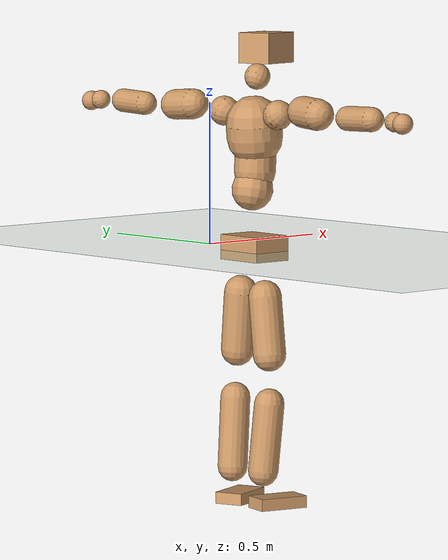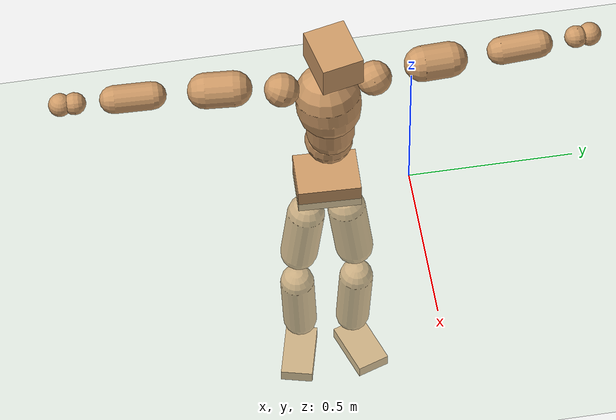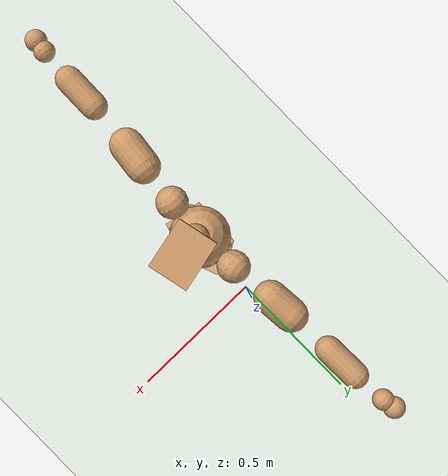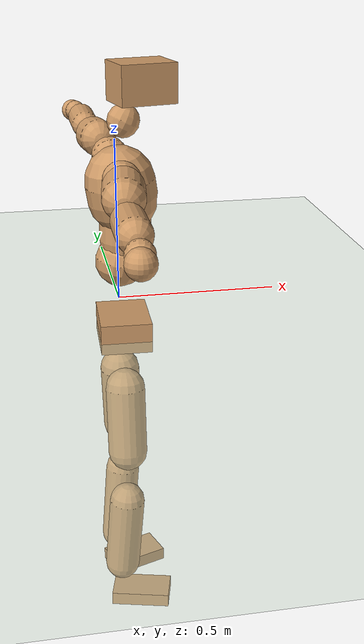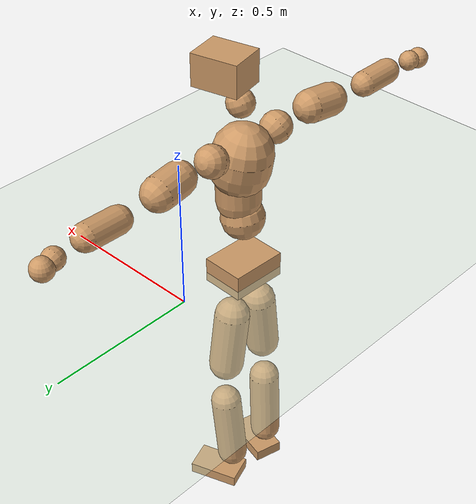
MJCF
<mujoco model="humanoid">
  <compiler coordinate="local" angle="radian"/>
  <default>
    <joint damping="0.0" armature="0.01" stiffness="0.0" limited="true"/>
    <geom conaffinity="1" condim="3" contype="7" margin="0.001" rgba="0.8 0.6 .4 1"/>
  </default>
  <asset>
    <texture type="skybox" builtin="gradient" rgb1=".4 .5 .6" rgb2="0 0 0" width="100" height="100"/>
    <texture builtin="flat" height="1278" mark="cross" markrgb="1 1 1" name="texgeom" random="0.01" rgb1="0.8 0.6 0.4" rgb2="0.8 0.6 0.4" type="cube" width="127"/>
    <texture builtin="checker" height="100" name="texplane" rgb1="0 0 0" rgb2="0.8 0.8 0.8" type="2d" width="100"/>
    <material name="MatPlane" reflectance="0.5" shininess="1" specular="1" texrepeat="60 60" texture="texplane"/>
    <material name="geom" texture="texgeom" texuniform="true"/>
  </asset>
  <worldbody>
    <light cutoff="100" diffuse="1 1 1" dir="-0 0 -1.3" directional="true" exponent="1" pos="0 0 1.3" specular=".1 .1 .1"/>
    <geom conaffinity="1" condim="3" name="floor" pos="0 0 0" rgba="0.8 0.9 0.8 1" size="100 100 .2" type="plane" material="MatPlane"/>
    <body name="Pelvis" pos="-0.0053 -0.2485 0.0169">
      <freejoint name="Pelvis"/>
      <geom type="box" contype="1" conaffinity="1" density="5359.374861" pos="-0.0119 0.0004 -0.0082" size="0.0726 0.0955 0.0433" quat="0.9999 0.0000 0.0000 -0.0169" name="Pelvis"/>
      <body name="L_Hip" pos="-0.0225 0.0515 -0.0806">
        <joint name="L_Hip_x" type="hinge" pos="0 0 0" axis="1 0 0" stiffness="1600" damping="160" armature="0.02" range="-180.0000 180.0000"/>
        <joint name="L_Hip_y" type="hinge" pos="0 0 0" axis="0 1 0" stiffness="1600" damping="160" armature="0.02" range="-180.0000 180.0000"/>
        <joint name="L_Hip_z" type="hinge" pos="0 0 0" axis="0 0 1" stiffness="1600" damping="160" armature="0.02" range="-180.0000 180.0000"/>
        <geom type="capsule" contype="1" conaffinity="1" density="2040.816327" size="0.0583" fromto="0.0031 0.0102 -0.0877 0.0102 0.0340 -0.2920" name="L_Hip"/>
        <body name="L_Knee" pos="0.0133 0.0442 -0.3796">
          <joint name="L_Knee_x" type="hinge" pos="0 0 0" axis="1 0 0" stiffness="1600" damping="160" armature="0.02" range="-180.0000 180.0000"/>
          <joint name="L_Knee_y" type="hinge" pos="0 0 0" axis="0 1 0" stiffness="1600" damping="160" armature="0.02" range="-180.0000 180.0000"/>
          <joint name="L_Knee_z" type="hinge" pos="0 0 0" axis="0 0 1" stiffness="1600" damping="160" armature="0.02" range="-180.0000 180.0000"/>
          <geom type="capsule" contype="1" conaffinity="1" density="1234.567901" size="0.0521" fromto="-0.0068 -0.0026 -0.0818 -0.0272 -0.0103 -0.3254" name="L_Knee"/>
          <body name="L_Ankle" pos="-0.034 -0.0129 -0.4071">
            <joint name="L_Ankle_x" type="hinge" pos="0 0 0" axis="1 0 0" stiffness="1600" damping="160" armature="0.02" range="-180.0000 180.0000"/>
            <joint name="L_Ankle_y" type="hinge" pos="0 0 0" axis="0 1 0" stiffness="1600" damping="160" armature="0.02" range="-180.0000 180.0000"/>
            <joint name="L_Ankle_z" type="hinge" pos="0 0 0" axis="0 0 1" stiffness="1600" damping="160" armature="0.02" range="-180.0000 180.0000"/>
            <geom type="box" contype="1" conaffinity="1" density="1000.000064" pos="0.0594 0.0206 -0.0294" size="0.0859 0.051 0.0203" quat="0.9861 0.0000 0.0000 0.1660" name="L_Ankle"/>
            <body name="L_Toe" pos="0.1188 0.0412 -0.0588">
              <joint name="L_Toe_x" type="hinge" pos="0 0 0" axis="1 0 0" stiffness="1000" damping="100" armature="0.02" range="-180.0000 180.0000"/>
              <joint name="L_Toe_y" type="hinge" pos="0 0 0" axis="0 1 0" stiffness="1000" damping="100" armature="0.02" range="-180.0000 180.0000"/>
              <joint name="L_Toe_z" type="hinge" pos="0 0 0" axis="0 0 1" stiffness="1000" damping="100" armature="0.02" range="-180.0000 180.0000"/>
              <geom type="box" contype="1" conaffinity="1" density="7837035.071031" pos="0.0000 0.0000 0.0296" size="0.001 0.0025 0.001" quat="0.9853 0.0000 0.0000 0.1708" name="L_Toe"/>
            </body>
          </body>
        </body>
      </body>
      <body name="R_Hip" pos="-0.0195 -0.053 -0.0882">
        <joint name="R_Hip_x" type="hinge" pos="0 0 0" axis="1 0 0" stiffness="1600" damping="160" armature="0.02" range="-180.0000 180.0000"/>
        <joint name="R_Hip_y" type="hinge" pos="0 0 0" axis="0 1 0" stiffness="1600" damping="160" armature="0.02" range="-180.0000 180.0000"/>
        <joint name="R_Hip_z" type="hinge" pos="0 0 0" axis="0 0 1" stiffness="1600" damping="160" armature="0.02" range="-180.0000 180.0000"/>
        <geom type="capsule" contype="1" conaffinity="1" density="2040.816327" size="0.0575" fromto="0.0000 -0.0097 -0.0869 0.0002 -0.0323 -0.2878" name="R_Hip"/>
        <body name="R_Knee" pos="0.0002 -0.042 -0.3748">
          <joint name="R_Knee_x" type="hinge" pos="0 0 0" axis="1 0 0" stiffness="1600" damping="160" armature="0.02" range="-180.0000 180.0000"/>
          <joint name="R_Knee_y" type="hinge" pos="0 0 0" axis="0 1 0" stiffness="1600" damping="160" armature="0.02" range="-180.0000 180.0000"/>
          <joint name="R_Knee_z" type="hinge" pos="0 0 0" axis="0 0 1" stiffness="1600" damping="160" armature="0.02" range="-180.0000 180.0000"/>
          <geom type="capsule" contype="1" conaffinity="1" density="1234.567901" size="0.0523" fromto="-0.0064 0.0038 -0.0820 -0.0248 0.0148 -0.3186" name="R_Knee"/>
          <body name="R_Ankle" pos="-0.0312 0.0186 -0.4006">
            <joint name="R_Ankle_x" type="hinge" pos="0 0 0" axis="1 0 0" stiffness="1600" damping="160" armature="0.02" range="-180.0000 180.0000"/>
            <joint name="R_Ankle_y" type="hinge" pos="0 0 0" axis="0 1 0" stiffness="1600" damping="160" armature="0.02" range="-180.0000 180.0000"/>
            <joint name="R_Ankle_z" type="hinge" pos="0 0 0" axis="0 0 1" stiffness="1600" damping="160" armature="0.02" range="-180.0000 180.0000"/>
            <geom type="box" contype="1" conaffinity="1" density="1000.000034" pos="0.0637 -0.0163 -0.0301" size="0.0884 0.0491 0.0208" quat="0.9922 0.0000 0.0000 -0.1249" name="R_Ankle"/>
            <body name="R_Toe" pos="0.1275 -0.0326 -0.0602">
              <joint name="R_Toe_x" type="hinge" pos="0 0 0" axis="1 0 0" stiffness="1000" damping="100" armature="0.02" range="-180.0000 180.0000"/>
              <joint name="R_Toe_y" type="hinge" pos="0 0 0" axis="0 1 0" stiffness="1000" damping="100" armature="0.02" range="-180.0000 180.0000"/>
              <joint name="R_Toe_z" type="hinge" pos="0 0 0" axis="0 0 1" stiffness="1000" damping="100" armature="0.02" range="-180.0000 180.0000"/>
              <geom type="box" contype="1" conaffinity="1" density="8322759.362701" pos="0.0000 0.0000 0.0311" size="0.001 0.0024 0.0011" quat="0.9933 0.0000 0.0000 -0.1158" name="R_Toe"/>
            </body>
          </body>
        </body>
      </body>
      <body name="Torso" pos="-0.0294 0.0039 0.1197">
        <joint name="Torso_x" type="hinge" pos="0 0 0" axis="1 0 0" stiffness="2000" damping="200" armature="0.02" range="-180.0000 180.0000"/>
        <joint name="Torso_y" type="hinge" pos="0 0 0" axis="0 1 0" stiffness="2000" damping="200" armature="0.02" range="-180.0000 180.0000"/>
        <joint name="Torso_z" type="hinge" pos="0 0 0" axis="0 0 1" stiffness="2000" damping="200" armature="0.02" range="-180.0000 180.0000"/>
        <geom type="capsule" contype="1" conaffinity="1" density="2040.816327" size="0.072" fromto="0.0144 0.0028 0.0724 0.0148 0.0028 0.0744" name="Torso"/>
        <body name="Spine" pos="0.0293 0.0056 0.1468">
          <joint name="Spine_x" type="hinge" pos="0 0 0" axis="1 0 0" stiffness="2000" damping="200" armature="0.02" range="-180.0000 180.0000"/>
          <joint name="Spine_y" type="hinge" pos="0 0 0" axis="0 1 0" stiffness="2000" damping="200" armature="0.02" range="-180.0000 180.0000"/>
          <joint name="Spine_z" type="hinge" pos="0 0 0" axis="0 0 1" stiffness="2000" damping="200" armature="0.02" range="-180.0000 180.0000"/>
          <geom type="capsule" contype="1" conaffinity="1" density="2040.816327" size="0.0724" fromto="0.0031 -0.0010 0.0723 -0.0005 0.0002 -0.0127" name="Spine"/>
          <body name="Chest" pos="0.0025 -0.0008 0.0596">
            <joint name="Chest_x" type="hinge" pos="0 0 0" axis="1 0 0" stiffness="2000" damping="200" armature="0.02" range="-180.0000 180.0000"/>
            <joint name="Chest_y" type="hinge" pos="0 0 0" axis="0 1 0" stiffness="2000" damping="200" armature="0.02" range="-180.0000 180.0000"/>
            <joint name="Chest_z" type="hinge" pos="0 0 0" axis="0 0 1" stiffness="2000" damping="200" armature="0.02" range="-180.0000 180.0000"/>
            <geom type="capsule" contype="1" conaffinity="1" density="2040.816327" size="0.0971" fromto="-0.0142 -0.0059 0.0958 -0.0070 -0.0029 0.0471" name="Chest"/>
            <body name="Neck" pos="-0.0266 -0.015 0.21">
              <joint name="Neck_x" type="hinge" pos="0 0 0" axis="1 0 0" stiffness="1000" damping="100" armature="0.02" range="-180.0000 180.0000"/>
              <joint name="Neck_y" type="hinge" pos="0 0 0" axis="0 1 0" stiffness="1000" damping="100" armature="0.02" range="-180.0000 180.0000"/>
              <joint name="Neck_z" type="hinge" pos="0 0 0" axis="0 0 1" stiffness="1000" damping="100" armature="0.02" range="-180.0000 180.0000"/>
              <geom type="capsule" contype="1" conaffinity="1" density="1000" size="0.0444" fromto="0.0247 0.0048 0.0476 0.0256 0.0049 0.0494" name="Neck"/>
              <body name="Head" pos="0.0504 0.0097 0.097">
                <joint name="Head_x" type="hinge" pos="0 0 0" axis="1 0 0" stiffness="1000" damping="100" armature="0.02" range="-180.0000 180.0000"/>
                <joint name="Head_y" type="hinge" pos="0 0 0" axis="0 1 0" stiffness="1000" damping="100" armature="0.02" range="-180.0000 180.0000"/>
                <joint name="Head_z" type="hinge" pos="0 0 0" axis="0 0 1" stiffness="1000" damping="100" armature="0.02" range="-180.0000 180.0000"/>
                <geom type="box" contype="1" conaffinity="1" density="2250.00008" pos="0.0262 0.0058 0.0495" size="0.0775 0.0624 0.0529" quat="0.9940 0.0000 0.0000 0.1095" name="Head"/>
              </body>
            </body>
            <body name="L_Thorax" pos="-0.0152 0.0718 0.1107">
              <joint name="L_Thorax_x" type="hinge" pos="0 0 0" axis="1 0 0" stiffness="1000" damping="100" armature="0.02" range="-180.0000 180.0000"/>
              <joint name="L_Thorax_y" type="hinge" pos="0 0 0" axis="0 1 0" stiffness="1000" damping="100" armature="0.02" range="-180.0000 180.0000"/>
              <joint name="L_Thorax_z" type="hinge" pos="0 0 0" axis="0 0 1" stiffness="1000" damping="100" armature="0.02" range="-180.0000 180.0000"/>
              <geom type="capsule" contype="1" conaffinity="1" density="1000" size="0.0519" fromto="-0.0085 0.0611 0.0231 -0.0088 0.0629 0.0238" name="L_Thorax"/>
              <body name="L_Shoulder" pos="-0.0173 0.124 0.0469">
                <joint name="L_Shoulder_x" type="hinge" pos="0 0 0" axis="1 0 0" stiffness="1000" damping="100" armature="0.02" range="-720.0000 720.0000"/>
                <joint name="L_Shoulder_y" type="hinge" pos="0 0 0" axis="0 1 0" stiffness="1000" damping="100" armature="0.02" range="-720.0000 720.0000"/>
                <joint name="L_Shoulder_z" type="hinge" pos="0 0 0" axis="0 0 1" stiffness="1000" damping="100" armature="0.02" range="-720.0000 720.0000"/>
                <geom type="capsule" contype="1" conaffinity="1" density="1000" size="0.0536" fromto="-0.0070 0.0831 -0.0057 -0.0141 0.1667 -0.0115" name="L_Shoulder"/>
                <body name="L_Elbow" pos="-0.0212 0.2498 -0.0172">
                  <joint name="L_Elbow_x" type="hinge" pos="0 0 0" axis="1 0 0" stiffness="1000" damping="100" armature="0.02" range="-720.0000 720.0000"/>
                  <joint name="L_Elbow_y" type="hinge" pos="0 0 0" axis="0 1 0" stiffness="1000" damping="100" armature="0.02" range="-720.0000 720.0000"/>
                  <joint name="L_Elbow_z" type="hinge" pos="0 0 0" axis="0 0 1" stiffness="1000" damping="100" armature="0.02" range="-720.0000 720.0000"/>
                  <geom type="capsule" contype="1" conaffinity="1" density="1000" size="0.0417" fromto="-0.0020 0.0716 0.0033 -0.0051 0.1853 0.0086" name="L_Elbow"/>
                  <body name="L_Wrist" pos="-0.007 0.2568 0.012">
                    <joint name="L_Wrist_x" type="hinge" pos="0 0 0" axis="1 0 0" stiffness="600" damping="60" armature="0.02" range="-180.0000 180.0000"/>
                    <joint name="L_Wrist_y" type="hinge" pos="0 0 0" axis="0 1 0" stiffness="600" damping="60" armature="0.02" range="-180.0000 180.0000"/>
                    <joint name="L_Wrist_z" type="hinge" pos="0 0 0" axis="0 0 1" stiffness="600" damping="60" armature="0.02" range="-180.0000 180.0000"/>
                    <geom type="capsule" contype="1" conaffinity="1" density="1000" size="0.0333" fromto="-0.0074 0.0413 -0.0051 -0.0077 0.0433 -0.0054" name="L_Wrist"/>
                    <body name="L_Hand" pos="-0.0151 0.0846 -0.0105">
                      <joint name="L_Hand_x" type="hinge" pos="0 0 0" axis="1 0 0" stiffness="600" damping="60" armature="0.02" range="-180.0000 180.0000"/>
                      <joint name="L_Hand_y" type="hinge" pos="0 0 0" axis="0 1 0" stiffness="600" damping="60" armature="0.02" range="-180.0000 180.0000"/>
                      <joint name="L_Hand_z" type="hinge" pos="0 0 0" axis="0 0 1" stiffness="600" damping="60" armature="0.02" range="-180.0000 180.0000"/>
                      <geom type="sphere" contype="1" conaffinity="1" density="1000" size="0.0348" pos="0.0000 0.0000 0.0000" name="L_Hand"/>
                    </body>
                  </body>
                </body>
              </body>
            </body>
            <body name="R_Thorax" pos="-0.0218 -0.0831 0.1082">
              <joint name="R_Thorax_x" type="hinge" pos="0 0 0" axis="1 0 0" stiffness="1000" damping="100" armature="0.02" range="-180.0000 180.0000"/>
              <joint name="R_Thorax_y" type="hinge" pos="0 0 0" axis="0 1 0" stiffness="1000" damping="100" armature="0.02" range="-180.0000 180.0000"/>
              <joint name="R_Thorax_z" type="hinge" pos="0 0 0" axis="0 0 1" stiffness="1000" damping="100" armature="0.02" range="-180.0000 180.0000"/>
              <geom type="capsule" contype="1" conaffinity="1" density="1000" size="0.0515" fromto="-0.0036 -0.0554 0.0234 -0.0038 -0.0572 0.0242" name="R_Thorax"/>
              <body name="R_Shoulder" pos="-0.0074 -0.1125 0.0477">
                <joint name="R_Shoulder_x" type="hinge" pos="0 0 0" axis="1 0 0" stiffness="1000" damping="100" armature="0.02" range="-720.0000 720.0000"/>
                <joint name="R_Shoulder_y" type="hinge" pos="0 0 0" axis="0 1 0" stiffness="1000" damping="100" armature="0.02" range="-720.0000 720.0000"/>
                <joint name="R_Shoulder_z" type="hinge" pos="0 0 0" axis="0 0 1" stiffness="1000" damping="100" armature="0.02" range="-720.0000 720.0000"/>
                <geom type="capsule" contype="1" conaffinity="1" density="1000" size="0.0539" fromto="-0.0099 -0.0832 -0.0053 -0.0198 -0.1668 -0.0107" name="R_Shoulder"/>
                <body name="R_Elbow" pos="-0.0297 -0.25 -0.016">
                  <joint name="R_Elbow_x" type="hinge" pos="0 0 0" axis="1 0 0" stiffness="1000" damping="100" armature="0.02" range="-720.0000 720.0000"/>
                  <joint name="R_Elbow_y" type="hinge" pos="0 0 0" axis="0 1 0" stiffness="1000" damping="100" armature="0.02" range="-720.0000 720.0000"/>
                  <joint name="R_Elbow_z" type="hinge" pos="0 0 0" axis="0 0 1" stiffness="1000" damping="100" armature="0.02" range="-720.0000 720.0000"/>
                  <geom type="capsule" contype="1" conaffinity="1" density="1000" size="0.0417" fromto="-0.0011 -0.0717 0.0014 -0.0030 -0.1862 0.0036" name="R_Elbow"/>
                  <body name="R_Wrist" pos="-0.0041 -0.2578 0.005">
                    <joint name="R_Wrist_x" type="hinge" pos="0 0 0" axis="1 0 0" stiffness="600" damping="60" armature="0.02" range="-180.0000 180.0000"/>
                    <joint name="R_Wrist_y" type="hinge" pos="0 0 0" axis="0 1 0" stiffness="600" damping="60" armature="0.02" range="-180.0000 180.0000"/>
                    <joint name="R_Wrist_z" type="hinge" pos="0 0 0" axis="0 0 1" stiffness="600" damping="60" armature="0.02" range="-180.0000 180.0000"/>
                    <geom type="capsule" contype="1" conaffinity="1" density="1000" size="0.0331" fromto="-0.0048 -0.0413 -0.0040 -0.0050 -0.0433 -0.0042" name="R_Wrist"/>
                    <body name="R_Hand" pos="-0.0098 -0.0847 -0.0082">
                      <joint name="R_Hand_x" type="hinge" pos="0 0 0" axis="1 0 0" stiffness="600" damping="60" armature="0.02" range="-180.0000 180.0000"/>
                      <joint name="R_Hand_y" type="hinge" pos="0 0 0" axis="0 1 0" stiffness="600" damping="60" armature="0.02" range="-180.0000 180.0000"/>
                      <joint name="R_Hand_z" type="hinge" pos="0 0 0" axis="0 0 1" stiffness="600" damping="60" armature="0.02" range="-180.0000 180.0000"/>
                      <geom type="sphere" contype="1" conaffinity="1" density="1000" size="0.0344" pos="0.0000 0.0000 0.0000" name="R_Hand"/>
                    </body>
                  </body>
                </body>
              </body>
            </body>
          </body>
        </body>
      </body>
    </body>
  </worldbody>
  <actuator>
    <motor name="L_Hip_x" joint="L_Hip_x" gear="500"/>
    <motor name="L_Hip_y" joint="L_Hip_y" gear="500"/>
    <motor name="L_Hip_z" joint="L_Hip_z" gear="500"/>
    <motor name="L_Knee_x" joint="L_Knee_x" gear="500"/>
    <motor name="L_Knee_y" joint="L_Knee_y" gear="500"/>
    <motor name="L_Knee_z" joint="L_Knee_z" gear="500"/>
    <motor name="L_Ankle_x" joint="L_Ankle_x" gear="500"/>
    <motor name="L_Ankle_y" joint="L_Ankle_y" gear="500"/>
    <motor name="L_Ankle_z" joint="L_Ankle_z" gear="500"/>
    <motor name="L_Toe_x" joint="L_Toe_x" gear="500"/>
    <motor name="L_Toe_y" joint="L_Toe_y" gear="500"/>
    <motor name="L_Toe_z" joint="L_Toe_z" gear="500"/>
    <motor name="R_Hip_x" joint="R_Hip_x" gear="500"/>
    <motor name="R_Hip_y" joint="R_Hip_y" gear="500"/>
    <motor name="R_Hip_z" joint="R_Hip_z" gear="500"/>
    <motor name="R_Knee_x" joint="R_Knee_x" gear="500"/>
    <motor name="R_Knee_y" joint="R_Knee_y" gear="500"/>
    <motor name="R_Knee_z" joint="R_Knee_z" gear="500"/>
    <motor name="R_Ankle_x" joint="R_Ankle_x" gear="500"/>
    <motor name="R_Ankle_y" joint="R_Ankle_y" gear="500"/>
    <motor name="R_Ankle_z" joint="R_Ankle_z" gear="500"/>
    <motor name="R_Toe_x" joint="R_Toe_x" gear="500"/>
    <motor name="R_Toe_y" joint="R_Toe_y" gear="500"/>
    <motor name="R_Toe_z" joint="R_Toe_z" gear="500"/>
    <motor name="Torso_x" joint="Torso_x" gear="500"/>
    <motor name="Torso_y" joint="Torso_y" gear="500"/>
    <motor name="Torso_z" joint="Torso_z" gear="500"/>
    <motor name="Spine_x" joint="Spine_x" gear="500"/>
    <motor name="Spine_y" joint="Spine_y" gear="500"/>
    <motor name="Spine_z" joint="Spine_z" gear="500"/>
    <motor name="Chest_x" joint="Chest_x" gear="500"/>
    <motor name="Chest_y" joint="Chest_y" gear="500"/>
    <motor name="Chest_z" joint="Chest_z" gear="500"/>
    <motor name="Neck_x" joint="Neck_x" gear="500"/>
    <motor name="Neck_y" joint="Neck_y" gear="500"/>
    <motor name="Neck_z" joint="Neck_z" gear="500"/>
    <motor name="Head_x" joint="Head_x" gear="500"/>
    <motor name="Head_y" joint="Head_y" gear="500"/>
    <motor name="Head_z" joint="Head_z" gear="500"/>
    <motor name="L_Thorax_x" joint="L_Thorax_x" gear="500"/>
    <motor name="L_Thorax_y" joint="L_Thorax_y" gear="500"/>
    <motor name="L_Thorax_z" joint="L_Thorax_z" gear="500"/>
    <motor name="L_Shoulder_x" joint="L_Shoulder_x" gear="500"/>
    <motor name="L_Shoulder_y" joint="L_Shoulder_y" gear="500"/>
    <motor name="L_Shoulder_z" joint="L_Shoulder_z" gear="500"/>
    <motor name="L_Elbow_x" joint="L_Elbow_x" gear="500"/>
    <motor name="L_Elbow_y" joint="L_Elbow_y" gear="500"/>
    <motor name="L_Elbow_z" joint="L_Elbow_z" gear="500"/>
    <motor name="L_Wrist_x" joint="L_Wrist_x" gear="500"/>
    <motor name="L_Wrist_y" joint="L_Wrist_y" gear="500"/>
    <motor name="L_Wrist_z" joint="L_Wrist_z" gear="500"/>
    <motor name="L_Hand_x" joint="L_Hand_x" gear="500"/>
    <motor name="L_Hand_y" joint="L_Hand_y" gear="500"/>
    <motor name="L_Hand_z" joint="L_Hand_z" gear="500"/>
    <motor name="R_Thorax_x" joint="R_Thorax_x" gear="500"/>
    <motor name="R_Thorax_y" joint="R_Thorax_y" gear="500"/>
    <motor name="R_Thorax_z" joint="R_Thorax_z" gear="500"/>
    <motor name="R_Shoulder_x" joint="R_Shoulder_x" gear="500"/>
    <motor name="R_Shoulder_y" joint="R_Shoulder_y" gear="500"/>
    <motor name="R_Shoulder_z" joint="R_Shoulder_z" gear="500"/>
    <motor name="R_Elbow_x" joint="R_Elbow_x" gear="500"/>
    <motor name="R_Elbow_y" joint="R_Elbow_y" gear="500"/>
    <motor name="R_Elbow_z" joint="R_Elbow_z" gear="500"/>
    <motor name="R_Wrist_x" joint="R_Wrist_x" gear="500"/>
    <motor name="R_Wrist_y" joint="R_Wrist_y" gear="500"/>
    <motor name="R_Wrist_z" joint="R_Wrist_z" gear="500"/>
    <motor name="R_Hand_x" joint="R_Hand_x" gear="500"/>
    <motor name="R_Hand_y" joint="R_Hand_y" gear="500"/>
    <motor name="R_Hand_z" joint="R_Hand_z" gear="500"/>
  </actuator>
  <contact>
    <exclude body1="Torso" body2="Chest"/>
    <exclude body1="Head" body2="Chest"/>
    <exclude body1="R_Knee" body2="R_Toe"/>
    <exclude body1="R_Knee" body2="L_Ankle"/>
    <exclude body1="R_Knee" body2="L_Toe"/>
    <exclude body1="L_Knee" body2="L_Toe"/>
    <exclude body1="L_Knee" body2="R_Ankle"/>
    <exclude body1="L_Knee" body2="R_Toe"/>
    <exclude body1="L_Shoulder" body2="Chest"/>
    <exclude body1="R_Shoulder" body2="Chest"/>
  </contact>
  <sensor/>
  <size njmax="700" nconmax="700"/>
</mujoco>
